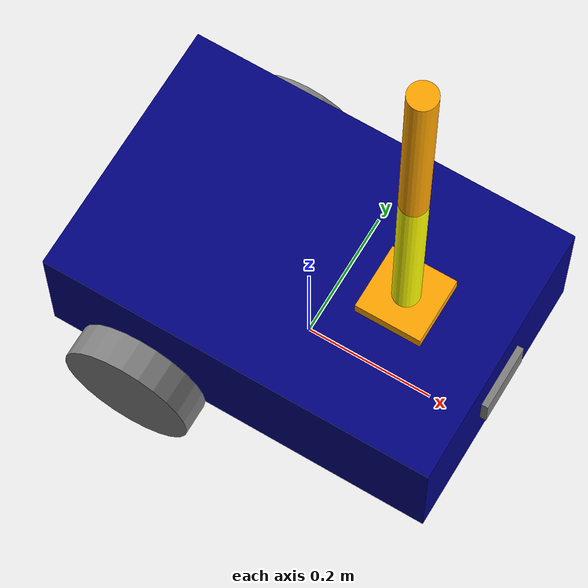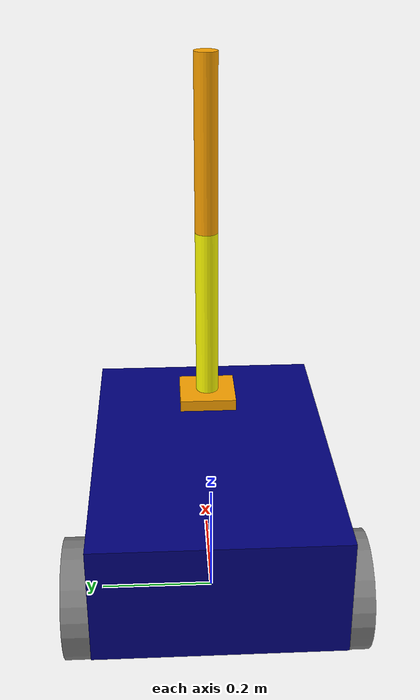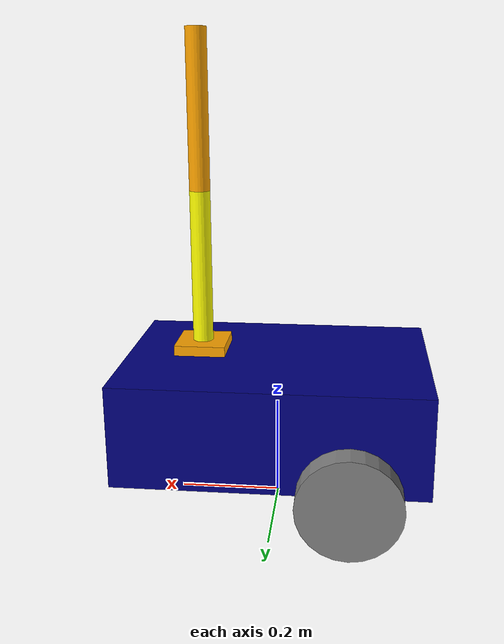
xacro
<?xml version="1.0"?>
<robot name="my_robot" xmlns:xacro="http://www.ros.org/wiki/xacro">

    <xacro:include filename="common_properties.xacro" />
    <xacro:include filename="mobile_base.xacro" />
    <xacro:include filename="mobile_base_gazebo.xacro" />
    <xacro:include filename="arm.xacro" />
    <xacro:include filename="arm_gazebo.xacro" />
    <xacro:include filename="camera.xacro" />

    <joint name="mobile_base_arm_joint" type="fixed">
        <parent link="base_link" />
        <child link="arm_base_footprint" />
        <origin xyz="${base_length/4.0} 0 ${base_height}" rpy="0 0 0"/>
    </joint>

</robot>

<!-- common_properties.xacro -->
<robot xmlns:xacro="http://www.ros.org/wiki/xacro">

    <material name="blue">
        <color rgba="0 0 0.5 1" />
    </material>

    <material name="gray">
        <color rgba="0.5 0.5 0.5 1" />
    </material>

    <material name="orange">
        <color rgba="1.0 0.647 0 1" />
    </material>

    <material name="yellow">
        <color rgba="1.0 1.0 0 1" />
    </material>

    <xacro:macro name="box_inertia" params="m x y z o_xyz o_rpy">
        <inertial>
            <mass value="${m}" />
            <origin xyz="${o_xyz}" rpy="${o_rpy}" />
            <inertia ixx="${(m / 12) * (y * y + z * z)}" ixy="0" ixz="0"
                     iyy="${(m / 12) * (z * z + x * x)}" iyz="0"
                     izz="${(m / 12) * (y * y + x * x)}" />
        </inertial>
    </xacro:macro>

    <xacro:macro name="cylinder_inertia" params="m r h o_xyz o_rpy">
        <inertial>
            <mass value="${m}" />
            <origin xyz="${o_xyz}" rpy="${o_rpy}" />
            <inertia ixx="${(m / 12) * (3 * r * r + h * h)}" ixy="0" ixz="0"
                     iyy="${(m / 12) * (3 * r * r + h * h)}" iyz="0"
                     izz="${(m/2)*(r*r)}" />
        </inertial>

    </xacro:macro>

    <xacro:macro name="sphere_inertia" params="m r o_xyz o_rpy">
        <inertial>
            <mass value="${m}" />
            <origin xyz="${o_xyz}" rpy="${o_rpy}" />
            <inertia ixx="${(2/5)* m * r *r}" ixy="0" ixz="0"
                     iyy="${(2/5)* m * r *r}" iyz="0"
                     izz="${(2/5)* m * r *r}" />
        </inertial>

    </xacro:macro>

</robot>

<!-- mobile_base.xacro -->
<robot xmlns:xacro="http://www.ros.org/wiki/xacro">

    <xacro:property name="base_length" value="0.6" />
    <xacro:property name="base_width" value="0.4" />
    <xacro:property name="base_height" value="0.2" />
    <xacro:property name="wheel_radius" value="0.1" />
    <xacro:property name="wheel_length" value="0.05" />

    <link name="base_link">
        <visual>
            <geometry>
                <box size="${base_length} ${base_width} ${base_height}" />
            </geometry>
            <origin xyz="0 0 ${base_height / 2.0}" rpy="0 0 0" />
            <material name="blue" />
        </visual>

        <collision>
            <geometry>
                <box size="${base_length} ${base_width} ${base_height}" />
            </geometry>
            <origin xyz="0 0 ${base_height / 2.0}" rpy="0 0 0" />
        </collision>

        <xacro:box_inertia m="5.0" x="${base_length}" y="${base_width}" z="${base_height}"
                           o_xyz="0 0 ${base_height / 2.0}" o_rpy="0 0 0" />
    </link>

    <xacro:macro name="wheel_link" params="prefix">
        <link name="${prefix}_wheel_link">
            <visual>
                <geometry>
                    <cylinder radius="${wheel_radius}" length="${wheel_length}" />
                </geometry>
                <origin xyz="0 0 0" rpy="${pi / 2.0} 0 0" />
                <material name="gray" />
            </visual>

            <collision>
                <geometry>
                    <sphere radius="${wheel_radius}" />
                </geometry>
                <origin xyz="0 0 0" rpy="0 0 0" />
            </collision>

            <xacro:cylinder_inertia m="1.0" r="${wheel_radius}" h="${wheel_length}"
                                    o_xyz="0 0 0" o_rpy="${pi / 2.0} 0 0" />
        </link>
    </xacro:macro>

    <xacro:wheel_link prefix="right" />
    <xacro:wheel_link prefix="left" />

    <link name="castor_wheel_link">
        <visual>
            <geometry>
                <sphere radius="${wheel_radius/2.0}" />
            </geometry>
            <origin xyz="0 0 0" rpy="0 0 0" />
            <material name="gray" />
        </visual>

        <collision>
            <geometry>
                <sphere radius="${wheel_radius/2.0}" />
            </geometry>
            <origin xyz="0 0 0" rpy="0 0 0" />
        </collision>

        <xacro:sphere_inertia m="0.5" r="${wheel_radius/2.0}"
                              o_xyz="0 0 0" o_rpy="0 0 0" />
    </link>

    <link name="base_footprint">
    </link>

    <joint name="base_joint" type="fixed">
        <parent link="base_footprint" />
        <child link="base_link" />
        <origin xyz="0 0 0.1" rpy="0 0 0" />

    </joint>

    <joint name="base_right_wheel_joint" type="continuous">
        <parent link="base_link" />
        <child link="right_wheel_link" />
        <origin xyz="${- base_length / 4.0} ${- ((base_width / 2) + (wheel_length/2)) } 0" rpy="0 0 0" />
        <axis xyz="0 1 0" />
    </joint>

    <joint name="base_left_wheel_joint" type="continuous">
        <parent link="base_link" />
        <child link="left_wheel_link" />
        <origin xyz="${- base_length / 4.0} ${((base_width / 2) + (wheel_length/2))} 0" rpy="0 0 0" />
        <axis xyz="0 1 0" />
    </joint>

    <joint name="base_castor_wheel_joint" type="fixed">
        <parent link="base_link" />
        <child link="castor_wheel_link" />
        <origin xyz="${base_length / 3.0} 0 ${- wheel_radius / 2.0}" rpy="0 0 0" />
    </joint>

</robot>

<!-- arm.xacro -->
<robot name="my_robot" xmlns:xacro="http://www.ros.org/wiki/xacro">

    <xacro:property name="arm_base_length" value="0.1" />
    <xacro:property name="arm_base_width" value="0.1" />
    <xacro:property name="arm_base_height" value="0.02" />
    <xacro:property name="arm_radius" value="0.02" />
    <xacro:property name="arm_length" value="0.3" />

    <link name="arm_base_footprint" />

    <link name="arm_base_link">

        <visual>
            <geometry>
                <box size= "0.1 0.1 0.02" />
            </geometry>
            <origin xyz="0 0 0.01" rpy="0 0 0" />
            <material name="orange" />
        </visual>

        <collision>
            <geometry>
                <box size= "0.1 0.1 0.02" />
            </geometry>
            <origin xyz="0 0 0.01" rpy="0 0 0" />
        </collision>
        <xacro:box_inertia m="5.0" x="${arm_base_length}" y="${arm_base_width}" z="${arm_base_height}"
                           o_xyz="0 0 ${arm_base_height / 2.0}" o_rpy="0 0 0" />
    </link>

    <link name="forearm_link">

        <visual>
            <geometry>
                <cylinder radius="${arm_radius}" length="${arm_length}" />
            </geometry>
            <origin xyz="0 0 ${arm_length/2.0}" rpy="0 0 0" />
            <material name="yellow" />
        </visual>

        <collision>
            <geometry>
                <cylinder radius="${arm_radius}" length="${arm_length}" />
            </geometry>
            <origin xyz="0 0 ${arm_length/2.0}" rpy="0 0 0" />
        </collision>
        <xacro:cylinder_inertia m="0.3" r="${arm_radius}" h="${arm_length}"
                                    o_xyz="0 0 ${arm_length/2.0}" o_rpy="0 0 0" />
    </link>

    <link name="hand_link">
        <visual>
            <geometry>
                <cylinder radius="${arm_radius}" length="${arm_length}" />
            </geometry>
            <origin xyz="0 0 ${arm_length / 2.0}" rpy="0 0 0" />
            <material name="orange" />
        </visual>
        <collision>
            <geometry>
                <cylinder radius="${arm_radius}" length="${arm_length}" />
            </geometry>
            <origin xyz="0 0 ${arm_length/2.0}" rpy="0 0 0" />
        </collision>
        <xacro:cylinder_inertia m="0.3" r="${arm_radius}" h="${arm_length}"
                                    o_xyz="0 0 ${arm_length/2.0}" o_rpy="0 0 0" />
    </link>

    <joint name="arm_base_joint" type="fixed">
        <parent link="arm_base_footprint" />
        <child link="arm_base_link" />
        <origin xyz="0 0 0.01" rpy="0 0 0" />

    </joint>

    <joint name="arm_base_forearm_joint" type="revolute">
        <parent link="arm_base_link" />
        <child link="forearm_link" />
        <origin xyz="0 0 0.02" rpy="0 0 0" />
        <axis xyz="0 1 0" />
        <limit lower="0" upper="${pi/2.0}" effort="100" velocity="100" />
        <dynamics damping="0.3" friction="0.3" />
    </joint>

    <joint name="forearm_hand_joint" type="revolute">
        <parent link="forearm_link" />
        <child link="hand_link" />
        <origin xyz="0 0 ${arm_length}" rpy="0 0 0" />
        <axis xyz="0 1 0" />
        <limit lower="0" upper="${pi/2.0}" effort="100" velocity="100" />
        <dynamics damping="0.3" friction="0.3" />
    </joint>

</robot>

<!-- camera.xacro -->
<robot xmlns:xacro="http://www.ros.org/wiki/xacro">

    <xacro:property name="camera_length" value="0.01" />
    <xacro:property name="camera_width" value="0.1" />
    <xacro:property name="camera_height" value="0.05" />

    <link name="camera_link">
        <visual>
            <geometry>
                <box size="${camera_length} ${camera_width} ${camera_height}" />
            </geometry>
            <material name="gray" />
        </visual>
        <collision>
            <geometry>
                <box size="${camera_length} ${camera_width} ${camera_height}" />
            </geometry>
        </collision>
        <xacro:box_inertia m="0.1" x="${camera_length}" y="${camera_width}" z="${camera_height}"
                           o_xyz="0 0 0" o_rpy="0 0 0" />

    </link>

    <joint name="base_camera_joint" type="fixed">
        <parent link="base_link" />
        <child link="camera_link" />
        <origin xyz="${(base_length + camera_length)/2.0} 0 ${base_height/2.0}" rpy="0 0 0" />
    </joint>

    <link name="camera_link_optical">
    </link>

    <joint name="camera_optical_joint" type="fixed">
    <!-- these values have to be these values otherwise the gazebo camera
        image won't be aligned properly with the frame it is supposedly
        originating from -->
    <origin xyz="0 0 0" rpy="${-pi/2} 0 ${-pi/2}"/>
    <parent link="camera_link"/>
    <child link="camera_link_optical"/>
    </joint>

    <gazebo reference="camera_link">
        <sensor name="camera" type="camera">
            <camera>
                <horizontal_fov>1.3962634</horizontal_fov>
                <image>
                    <width>640</width>
                    <height>480</height>
                    <format>R8G8B8</format>
                </image>
                <clip>
                    <near>0.2</near>
                    <far>15</far>
                </clip>
                <noise>
                    <type>gaussian</type>
                    <mean>0.0</mean>
                    <stddev>0.007</stddev>
                </noise>
                <optical_frame_id>camera_link_optical</optical_frame_id>
                <camera_info_topic>camera/camera_info</camera_info_topic>
            </camera>
            <always_on>1</always_on>
            <update_rate>20</update_rate>
            <visualize>true</visualize>
            <topic>camera/image_raw</topic>
        </sensor>

    </gazebo>

</robot>
